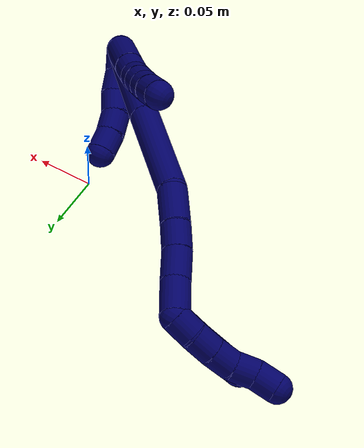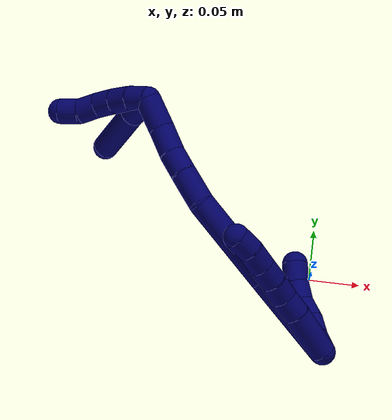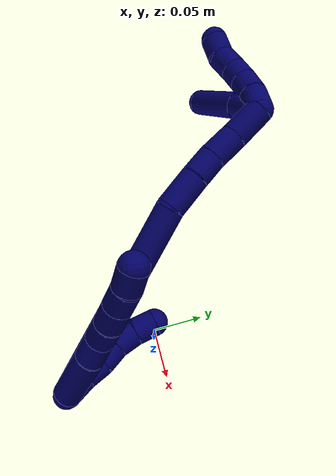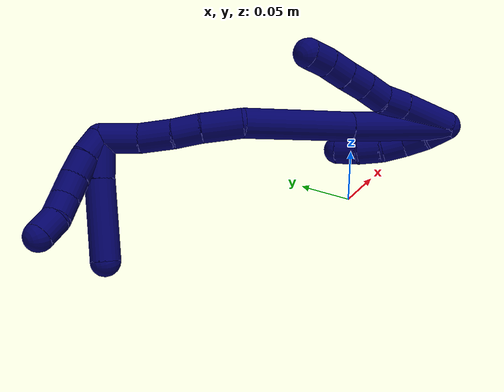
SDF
<sdf version="1.7">
 <world name="default">
  <model name="7">
   <static>0</static>
   <link name="7">
    <collision name="collision-cylinder-e_1_2_8">
     <pose>-0.00883 0.013323 0.016944 -0.666337 -0.388788 0.136058</pose>
     <geometry><cylinder><radius>0.0125</radius><length>0.046587</length></cylinder></geometry>
     <surface>
      <friction><ode><mu>1.16</mu><mu2>1.16</mu2><slip1>0</slip1><slip2>0</slip2></ode></friction>
      <contact><ode><kp>1e+06</kp><kd>1</kd><max_vel>0</max_vel><min_depth>0.001</min_depth></ode></contact>
     </surface>
    </collision>
    <visual name="visual-cylinder-e_1_2_8">
     <pose>-0.00883 0.013323 0.016944 -0.666337 -0.388788 0.136058</pose>
     <geometry><cylinder><radius>0.0125</radius><length>0.046587</length></cylinder></geometry>
     <material><ambient>0.003922 0 0.403922 1</ambient></material>
    </visual>
    <collision name="collision-cylinder-e_2_8_9">
     <pose>-0.021692 0.03217 0.042152 -0.589208 -0.385443 0.118288</pose>
     <geometry><cylinder><radius>0.0125</radius><length>0.021451</length></cylinder></geometry>
     <surface>
      <friction><ode><mu>1.16</mu><mu2>1.16</mu2><slip1>0</slip1><slip2>0</slip2></ode></friction>
      <contact><ode><kp>1e+06</kp><kd>1</kd><max_vel>0</max_vel><min_depth>0.001</min_depth></ode></contact>
     </surface>
    </collision>
    <visual name="visual-cylinder-e_2_8_9">
     <pose>-0.021692 0.03217 0.042152 -0.589208 -0.385443 0.118288</pose>
     <geometry><cylinder><radius>0.0125</radius><length>0.021451</length></cylinder></geometry>
     <material><ambient>0.003922 0 0.403922 1</ambient></material>
    </visual>
    <collision name="collision-cylinder-e_3_9_10">
     <pose>-0.02846 0.044882 0.057459 -0.795575 -0.265335 0.112032</pose>
     <geometry><cylinder><radius>0.0125</radius><length>0.02086</length></cylinder></geometry>
     <surface>
      <friction><ode><mu>1.16</mu><mu2>1.16</mu2><slip1>0</slip1><slip2>0</slip2></ode></friction>
      <contact><ode><kp>1e+06</kp><kd>1</kd><max_vel>0</max_vel><min_depth>0.001</min_depth></ode></contact>
     </surface>
    </collision>
    <visual name="visual-cylinder-e_3_9_10">
     <pose>-0.02846 0.044882 0.057459 -0.795575 -0.265335 0.112032</pose>
     <geometry><cylinder><radius>0.0125</radius><length>0.02086</length></cylinder></geometry>
     <material><ambient>0.003922 0 0.403922 1</ambient></material>
    </visual>
    <collision name="collision-cylinder-e_4_10_11">
     <pose>-0.033904 0.05859 0.072002 -0.715598 -0.266165 0.100025</pose>
     <geometry><cylinder><radius>0.0125</radius><length>0.020599</length></cylinder></geometry>
     <surface>
      <friction><ode><mu>1.16</mu><mu2>1.16</mu2><slip1>0</slip1><slip2>0</slip2></ode></friction>
      <contact><ode><kp>1e+06</kp><kd>1</kd><max_vel>0</max_vel><min_depth>0.001</min_depth></ode></contact>
     </surface>
    </collision>
    <visual name="visual-cylinder-e_4_10_11">
     <pose>-0.033904 0.05859 0.072002 -0.715598 -0.266165 0.100025</pose>
     <geometry><cylinder><radius>0.0125</radius><length>0.020599</length></cylinder></geometry>
     <material><ambient>0.003922 0 0.403922 1</ambient></material>
    </visual>
    <collision name="collision-cylinder-e_5_11_12">
     <pose>-0.039116 0.071934 0.086727 -0.756866 -0.246726 0.098518</pose>
     <geometry><cylinder><radius>0.0125</radius><length>0.020499</length></cylinder></geometry>
     <surface>
      <friction><ode><mu>1.16</mu><mu2>1.16</mu2><slip1>0</slip1><slip2>0</slip2></ode></friction>
      <contact><ode><kp>1e+06</kp><kd>1</kd><max_vel>0</max_vel><min_depth>0.001</min_depth></ode></contact>
     </surface>
    </collision>
    <visual name="visual-cylinder-e_5_11_12">
     <pose>-0.039116 0.071934 0.086727 -0.756866 -0.246726 0.098518</pose>
     <geometry><cylinder><radius>0.0125</radius><length>0.020499</length></cylinder></geometry>
     <material><ambient>0.003922 0 0.403922 1</ambient></material>
    </visual>
    <collision name="collision-cylinder-e_6_12_6">
     <pose>-0.043565 0.084228 0.102097 -0.591395 -0.195722 0.059796</pose>
     <geometry><cylinder><radius>0.0125</radius><length>0.020004</length></cylinder></geometry>
     <surface>
      <friction><ode><mu>1.16</mu><mu2>1.16</mu2><slip1>0</slip1><slip2>0</slip2></ode></friction>
      <contact><ode><kp>1e+06</kp><kd>1</kd><max_vel>0</max_vel><min_depth>0.001</min_depth></ode></contact>
     </surface>
    </collision>
    <visual name="visual-cylinder-e_6_12_6">
     <pose>-0.043565 0.084228 0.102097 -0.591395 -0.195722 0.059796</pose>
     <geometry><cylinder><radius>0.0125</radius><length>0.020004</length></cylinder></geometry>
     <material><ambient>0.003922 0 0.403922 1</ambient></material>
    </visual>
    <collision name="collision-cylinder-e_1_2_13">
     <pose>-0.008445 -0.002735 0.004605 0.5359 -1.00563 -0.299723</pose>
     <geometry><cylinder><radius>0.0125</radius><length>0.02</length></cylinder></geometry>
     <surface>
      <friction><ode><mu>1.16</mu><mu2>1.16</mu2><slip1>0</slip1><slip2>0</slip2></ode></friction>
      <contact><ode><kp>1e+06</kp><kd>1</kd><max_vel>0</max_vel><min_depth>0.001</min_depth></ode></contact>
     </surface>
    </collision>
    <visual name="visual-cylinder-e_1_2_13">
     <pose>-0.008445 -0.002735 0.004605 0.5359 -1.00563 -0.299723</pose>
     <geometry><cylinder><radius>0.0125</radius><length>0.02</length></cylinder></geometry>
     <material><ambient>0.003922 0 0.403922 1</ambient></material>
    </visual>
    <collision name="collision-cylinder-e_2_13_14">
     <pose>-0.026014 -0.006966 0.013018 0.374345 -1.14919 -0.244031</pose>
     <geometry><cylinder><radius>0.0125</radius><length>0.02</length></cylinder></geometry>
     <surface>
      <friction><ode><mu>1.16</mu><mu2>1.16</mu2><slip1>0</slip1><slip2>0</slip2></ode></friction>
      <contact><ode><kp>1e+06</kp><kd>1</kd><max_vel>0</max_vel><min_depth>0.001</min_depth></ode></contact>
     </surface>
    </collision>
    <visual name="visual-cylinder-e_2_13_14">
     <pose>-0.026014 -0.006966 0.013018 0.374345 -1.14919 -0.244031</pose>
     <geometry><cylinder><radius>0.0125</radius><length>0.02</length></cylinder></geometry>
     <material><ambient>0.003922 0 0.403922 1</ambient></material>
    </visual>
    <collision name="collision-cylinder-e_3_14_15">
     <pose>-0.04314 -0.008885 0.02281 0.070562 -0.92757 -0.035304</pose>
     <geometry><cylinder><radius>0.0125</radius><length>0.02</length></cylinder></geometry>
     <surface>
      <friction><ode><mu>1.16</mu><mu2>1.16</mu2><slip1>0</slip1><slip2>0</slip2></ode></friction>
      <contact><ode><kp>1e+06</kp><kd>1</kd><max_vel>0</max_vel><min_depth>0.001</min_depth></ode></contact>
     </surface>
    </collision>
    <visual name="visual-cylinder-e_3_14_15">
     <pose>-0.04314 -0.008885 0.02281 0.070562 -0.92757 -0.035304</pose>
     <geometry><cylinder><radius>0.0125</radius><length>0.02</length></cylinder></geometry>
     <material><ambient>0.003922 0 0.403922 1</ambient></material>
    </visual>
    <collision name="collision-cylinder-e_4_15_16">
     <pose>-0.060249 -0.008497 0.032843 -0.197621 -1.14505 0.127617</pose>
     <geometry><cylinder><radius>0.0125</radius><length>0.02</length></cylinder></geometry>
     <surface>
      <friction><ode><mu>1.16</mu><mu2>1.16</mu2><slip1>0</slip1><slip2>0</slip2></ode></friction>
      <contact><ode><kp>1e+06</kp><kd>1</kd><max_vel>0</max_vel><min_depth>0.001</min_depth></ode></contact>
     </surface>
    </collision>
    <visual name="visual-cylinder-e_4_15_16">
     <pose>-0.060249 -0.008497 0.032843 -0.197621 -1.14505 0.127617</pose>
     <geometry><cylinder><radius>0.0125</radius><length>0.02</length></cylinder></geometry>
     <material><ambient>0.003922 0 0.403922 1</ambient></material>
    </visual>
    <collision name="collision-cylinder-e_5_16_5">
     <pose>-0.078847 -0.006041 0.03958 -0.549154 -1.25023 0.401106</pose>
     <geometry><cylinder><radius>0.0125</radius><length>0.02</length></cylinder></geometry>
     <surface>
      <friction><ode><mu>1.16</mu><mu2>1.16</mu2><slip1>0</slip1><slip2>0</slip2></ode></friction>
      <contact><ode><kp>1e+06</kp><kd>1</kd><max_vel>0</max_vel><min_depth>0.001</min_depth></ode></contact>
     </surface>
    </collision>
    <visual name="visual-cylinder-e_5_16_5">
     <pose>-0.078847 -0.006041 0.03958 -0.549154 -1.25023 0.401106</pose>
     <geometry><cylinder><radius>0.0125</radius><length>0.02</length></cylinder></geometry>
     <material><ambient>0.003922 0 0.403922 1</ambient></material>
    </visual>
    <collision name="collision-cylinder-e_1_2_17">
     <pose>-0.024015 0.010303 0.035517 -0.282339 -0.575938 0.08414</pose>
     <geometry><cylinder><radius>0.0125</radius><length>0.08819</length></cylinder></geometry>
     <surface>
      <friction><ode><mu>1.16</mu><mu2>1.16</mu2><slip1>0</slip1><slip2>0</slip2></ode></friction>
      <contact><ode><kp>1e+06</kp><kd>1</kd><max_vel>0</max_vel><min_depth>0.001</min_depth></ode></contact>
     </surface>
    </collision>
    <visual name="visual-cylinder-e_1_2_17">
     <pose>-0.024015 0.010303 0.035517 -0.282339 -0.575938 0.08414</pose>
     <geometry><cylinder><radius>0.0125</radius><length>0.08819</length></cylinder></geometry>
     <material><ambient>0.003922 0 0.403922 1</ambient></material>
    </visual>
    <collision name="collision-cylinder-e_2_17_18">
     <pose>-0.07281 0.033386 0.108891 -0.325574 -0.55513 0.093522</pose>
     <geometry><cylinder><radius>0.0125</radius><length>0.094031</length></cylinder></geometry>
     <surface>
      <friction><ode><mu>1.16</mu><mu2>1.16</mu2><slip1>0</slip1><slip2>0</slip2></ode></friction>
      <contact><ode><kp>1e+06</kp><kd>1</kd><max_vel>0</max_vel><min_depth>0.001</min_depth></ode></contact>
     </surface>
    </collision>
    <visual name="visual-cylinder-e_2_17_18">
     <pose>-0.07281 0.033386 0.108891 -0.325574 -0.55513 0.093522</pose>
     <geometry><cylinder><radius>0.0125</radius><length>0.094031</length></cylinder></geometry>
     <material><ambient>0.003922 0 0.403922 1</ambient></material>
    </visual>
    <collision name="collision-cylinder-e_3_18_19">
     <pose>-0.109879 0.04788 0.15822 -0.148305 -0.814258 0.064048</pose>
     <geometry><cylinder><radius>0.0125</radius><length>0.033799</length></cylinder></geometry>
     <surface>
      <friction><ode><mu>1.16</mu><mu2>1.16</mu2><slip1>0</slip1><slip2>0</slip2></ode></friction>
      <contact><ode><kp>1e+06</kp><kd>1</kd><max_vel>0</max_vel><min_depth>0.001</min_depth></ode></contact>
     </surface>
    </collision>
    <visual name="visual-cylinder-e_3_18_19">
     <pose>-0.109879 0.04788 0.15822 -0.148305 -0.814258 0.064048</pose>
     <geometry><cylinder><radius>0.0125</radius><length>0.033799</length></cylinder></geometry>
     <material><ambient>0.003922 0 0.403922 1</ambient></material>
    </visual>
    <collision name="collision-cylinder-e_4_19_20">
     <pose>-0.131086 0.049824 0.177162 -0.03082 -0.873263 0.014384</pose>
     <geometry><cylinder><radius>0.0125</radius><length>0.02327</length></cylinder></geometry>
     <surface>
      <friction><ode><mu>1.16</mu><mu2>1.16</mu2><slip1>0</slip1><slip2>0</slip2></ode></friction>
      <contact><ode><kp>1e+06</kp><kd>1</kd><max_vel>0</max_vel><min_depth>0.001</min_depth></ode></contact>
     </surface>
    </collision>
    <visual name="visual-cylinder-e_4_19_20">
     <pose>-0.131086 0.049824 0.177162 -0.03082 -0.873263 0.014384</pose>
     <geometry><cylinder><radius>0.0125</radius><length>0.02327</length></cylinder></geometry>
     <material><ambient>0.003922 0 0.403922 1</ambient></material>
    </visual>
    <collision name="collision-cylinder-e_5_20_21">
     <pose>-0.151457 0.051126 0.19262 -0.133302 -0.957665 0.069276</pose>
     <geometry><cylinder><radius>0.0125</radius><length>0.02801</length></cylinder></geometry>
     <surface>
      <friction><ode><mu>1.16</mu><mu2>1.16</mu2><slip1>0</slip1><slip2>0</slip2></ode></friction>
      <contact><ode><kp>1e+06</kp><kd>1</kd><max_vel>0</max_vel><min_depth>0.001</min_depth></ode></contact>
     </surface>
    </collision>
    <visual name="visual-cylinder-e_5_20_21">
     <pose>-0.151457 0.051126 0.19262 -0.133302 -0.957665 0.069276</pose>
     <geometry><cylinder><radius>0.0125</radius><length>0.02801</length></cylinder></geometry>
     <material><ambient>0.003922 0 0.403922 1</ambient></material>
    </visual>
    <collision name="collision-cylinder-e_6_21_1">
     <pose>-0.175242 0.055752 0.210739 -0.337484 -0.854335 0.154787</pose>
     <geometry><cylinder><radius>0.0125</radius><length>0.032701</length></cylinder></geometry>
     <surface>
      <friction><ode><mu>1.16</mu><mu2>1.16</mu2><slip1>0</slip1><slip2>0</slip2></ode></friction>
      <contact><ode><kp>1e+06</kp><kd>1</kd><max_vel>0</max_vel><min_depth>0.001</min_depth></ode></contact>
     </surface>
    </collision>
    <visual name="visual-cylinder-e_6_21_1">
     <pose>-0.175242 0.055752 0.210739 -0.337484 -0.854335 0.154787</pose>
     <geometry><cylinder><radius>0.0125</radius><length>0.032701</length></cylinder></geometry>
     <material><ambient>0.003922 0 0.403922 1</ambient></material>
    </visual>
    <collision name="collision-cylinder-e_1_1_22">
     <pose>-0.188968 0.053887 0.229158 0.579226 -0.14009 -0.041808</pose>
     <geometry><cylinder><radius>0.0125</radius><length>0.02</length></cylinder></geometry>
     <surface>
      <friction><ode><mu>1.16</mu><mu2>1.16</mu2><slip1>0</slip1><slip2>0</slip2></ode></friction>
      <contact><ode><kp>1e+06</kp><kd>1</kd><max_vel>0</max_vel><min_depth>0.001</min_depth></ode></contact>
     </surface>
    </collision>
    <visual name="visual-cylinder-e_1_1_22">
     <pose>-0.188968 0.053887 0.229158 0.579226 -0.14009 -0.041808</pose>
     <geometry><cylinder><radius>0.0125</radius><length>0.02</length></cylinder></geometry>
     <material><ambient>0.003922 0 0.403922 1</ambient></material>
    </visual>
    <collision name="collision-cylinder-e_2_22_23">
     <pose>-0.190895 0.041763 0.244846 0.735985 -0.053104 -0.020479</pose>
     <geometry><cylinder><radius>0.0125</radius><length>0.02</length></cylinder></geometry>
     <surface>
      <friction><ode><mu>1.16</mu><mu2>1.16</mu2><slip1>0</slip1><slip2>0</slip2></ode></friction>
      <contact><ode><kp>1e+06</kp><kd>1</kd><max_vel>0</max_vel><min_depth>0.001</min_depth></ode></contact>
     </surface>
    </collision>
    <visual name="visual-cylinder-e_2_22_23">
     <pose>-0.190895 0.041763 0.244846 0.735985 -0.053104 -0.020479</pose>
     <geometry><cylinder><radius>0.0125</radius><length>0.02</length></cylinder></geometry>
     <material><ambient>0.003922 0 0.403922 1</ambient></material>
    </visual>
    <collision name="collision-cylinder-e_3_23_24">
     <pose>-0.191154 0.028256 0.25957 0.748671 0.027215 0.010692</pose>
     <geometry><cylinder><radius>0.0125</radius><length>0.02</length></cylinder></geometry>
     <surface>
      <friction><ode><mu>1.16</mu><mu2>1.16</mu2><slip1>0</slip1><slip2>0</slip2></ode></friction>
      <contact><ode><kp>1e+06</kp><kd>1</kd><max_vel>0</max_vel><min_depth>0.001</min_depth></ode></contact>
     </surface>
    </collision>
    <visual name="visual-cylinder-e_3_23_24">
     <pose>-0.191154 0.028256 0.25957 0.748671 0.027215 0.010692</pose>
     <geometry><cylinder><radius>0.0125</radius><length>0.02</length></cylinder></geometry>
     <material><ambient>0.003922 0 0.403922 1</ambient></material>
    </visual>
    <collision name="collision-cylinder-e_4_24_25">
     <pose>-0.188183 0.016039 0.274858 0.596853 0.273243 0.084529</pose>
     <geometry><cylinder><radius>0.0125</radius><length>0.02</length></cylinder></geometry>
     <surface>
      <friction><ode><mu>1.16</mu><mu2>1.16</mu2><slip1>0</slip1><slip2>0</slip2></ode></friction>
      <contact><ode><kp>1e+06</kp><kd>1</kd><max_vel>0</max_vel><min_depth>0.001</min_depth></ode></contact>
     </surface>
    </collision>
    <visual name="visual-cylinder-e_4_24_25">
     <pose>-0.188183 0.016039 0.274858 0.596853 0.273243 0.084529</pose>
     <geometry><cylinder><radius>0.0125</radius><length>0.02</length></cylinder></geometry>
     <material><ambient>0.003922 0 0.403922 1</ambient></material>
    </visual>
    <collision name="collision-cylinder-e_5_25_4">
     <pose>-0.185184 0.006747 0.292033 0.398766 0.03008 0.006079</pose>
     <geometry><cylinder><radius>0.0125</radius><length>0.02</length></cylinder></geometry>
     <surface>
      <friction><ode><mu>1.16</mu><mu2>1.16</mu2><slip1>0</slip1><slip2>0</slip2></ode></friction>
      <contact><ode><kp>1e+06</kp><kd>1</kd><max_vel>0</max_vel><min_depth>0.001</min_depth></ode></contact>
     </surface>
    </collision>
    <visual name="visual-cylinder-e_5_25_4">
     <pose>-0.185184 0.006747 0.292033 0.398766 0.03008 0.006079</pose>
     <geometry><cylinder><radius>0.0125</radius><length>0.02</length></cylinder></geometry>
     <material><ambient>0.003922 0 0.403922 1</ambient></material>
    </visual>
    <collision name="collision-cylinder-e_1_1_26">
     <pose>-0.187315 0.043453 0.226415 1.23439 0.015286 0.010848</pose>
     <geometry><cylinder><radius>0.0125</radius><length>0.033596</length></cylinder></geometry>
     <surface>
      <friction><ode><mu>1.16</mu><mu2>1.16</mu2><slip1>0</slip1><slip2>0</slip2></ode></friction>
      <contact><ode><kp>1e+06</kp><kd>1</kd><max_vel>0</max_vel><min_depth>0.001</min_depth></ode></contact>
     </surface>
    </collision>
    <visual name="visual-cylinder-e_1_1_26">
     <pose>-0.187315 0.043453 0.226415 1.23439 0.015286 0.010848</pose>
     <geometry><cylinder><radius>0.0125</radius><length>0.033596</length></cylinder></geometry>
     <material><ambient>0.003922 0 0.403922 1</ambient></material>
    </visual>
    <collision name="collision-cylinder-e_2_26_3">
     <pose>-0.184927 -0.004305 0.240904 1.29745 0.064223 0.0487</pose>
     <geometry><cylinder><radius>0.0125</radius><length>0.066404</length></cylinder></geometry>
     <surface>
      <friction><ode><mu>1.16</mu><mu2>1.16</mu2><slip1>0</slip1><slip2>0</slip2></ode></friction>
      <contact><ode><kp>1e+06</kp><kd>1</kd><max_vel>0</max_vel><min_depth>0.001</min_depth></ode></contact>
     </surface>
    </collision>
    <visual name="visual-cylinder-e_2_26_3">
     <pose>-0.184927 -0.004305 0.240904 1.29745 0.064223 0.0487</pose>
     <geometry><cylinder><radius>0.0125</radius><length>0.066404</length></cylinder></geometry>
     <material><ambient>0.003922 0 0.403922 1</ambient></material>
    </visual>
    <collision name="collision-sphere-3">
     <pose>-0.182797 -0.036209 0.249848 0 -0 0</pose>
     <geometry><sphere><radius>0.0125</radius></sphere></geometry>
     <surface>
      <friction><ode><mu>1.16</mu><mu2>1.16</mu2><slip1>0</slip1><slip2>0</slip2></ode></friction>
      <contact><ode><kp>1e+06</kp><kd>1</kd><max_vel>0</max_vel><min_depth>0.001</min_depth></ode></contact>
     </surface>
    </collision>
    <visual name="visual-sphere-3">
     <pose>-0.182797 -0.036209 0.249848 0 -0 0</pose>
     <geometry><sphere><radius>0.0125</radius></sphere></geometry>
     <material><ambient>0.003922 0 0.403922 1</ambient></material>
    </visual>
    <collision name="collision-sphere-26">
     <pose>-0.187058 0.027598 0.231959 0 -0 0</pose>
     <geometry><sphere><radius>0.0125</radius></sphere></geometry>
     <surface>
      <friction><ode><mu>1.16</mu><mu2>1.16</mu2><slip1>0</slip1><slip2>0</slip2></ode></friction>
      <contact><ode><kp>1e+06</kp><kd>1</kd><max_vel>0</max_vel><min_depth>0.001</min_depth></ode></contact>
     </surface>
    </collision>
    <visual name="visual-sphere-26">
     <pose>-0.187058 0.027598 0.231959 0 -0 0</pose>
     <geometry><sphere><radius>0.0125</radius></sphere></geometry>
     <material><ambient>0.003922 0 0.403922 1</ambient></material>
    </visual>
    <collision name="collision-sphere-4">
     <pose>-0.184883 0.002865 0.301244 0 -0 0</pose>
     <geometry><sphere><radius>0.0125</radius></sphere></geometry>
     <surface>
      <friction><ode><mu>1.16</mu><mu2>1.16</mu2><slip1>0</slip1><slip2>0</slip2></ode></friction>
      <contact><ode><kp>1e+06</kp><kd>1</kd><max_vel>0</max_vel><min_depth>0.001</min_depth></ode></contact>
     </surface>
    </collision>
    <visual name="visual-sphere-4">
     <pose>-0.184883 0.002865 0.301244 0 -0 0</pose>
     <geometry><sphere><radius>0.0125</radius></sphere></geometry>
     <material><ambient>0.003922 0 0.403922 1</ambient></material>
    </visual>
    <collision name="collision-sphere-25">
     <pose>-0.185485 0.010628 0.282822 0 -0 0</pose>
     <geometry><sphere><radius>0.0125</radius></sphere></geometry>
     <surface>
      <friction><ode><mu>1.16</mu><mu2>1.16</mu2><slip1>0</slip1><slip2>0</slip2></ode></friction>
      <contact><ode><kp>1e+06</kp><kd>1</kd><max_vel>0</max_vel><min_depth>0.001</min_depth></ode></contact>
     </surface>
    </collision>
    <visual name="visual-sphere-25">
     <pose>-0.185485 0.010628 0.282822 0 -0 0</pose>
     <geometry><sphere><radius>0.0125</radius></sphere></geometry>
     <material><ambient>0.003922 0 0.403922 1</ambient></material>
    </visual>
    <collision name="collision-sphere-24">
     <pose>-0.190882 0.021451 0.266893 0 -0 0</pose>
     <geometry><sphere><radius>0.0125</radius></sphere></geometry>
     <surface>
      <friction><ode><mu>1.16</mu><mu2>1.16</mu2><slip1>0</slip1><slip2>0</slip2></ode></friction>
      <contact><ode><kp>1e+06</kp><kd>1</kd><max_vel>0</max_vel><min_depth>0.001</min_depth></ode></contact>
     </surface>
    </collision>
    <visual name="visual-sphere-24">
     <pose>-0.190882 0.021451 0.266893 0 -0 0</pose>
     <geometry><sphere><radius>0.0125</radius></sphere></geometry>
     <material><ambient>0.003922 0 0.403922 1</ambient></material>
    </visual>
    <collision name="collision-sphere-23">
     <pose>-0.191426 0.03506 0.252247 0 -0 0</pose>
     <geometry><sphere><radius>0.0125</radius></sphere></geometry>
     <surface>
      <friction><ode><mu>1.16</mu><mu2>1.16</mu2><slip1>0</slip1><slip2>0</slip2></ode></friction>
      <contact><ode><kp>1e+06</kp><kd>1</kd><max_vel>0</max_vel><min_depth>0.001</min_depth></ode></contact>
     </surface>
    </collision>
    <visual name="visual-sphere-23">
     <pose>-0.191426 0.03506 0.252247 0 -0 0</pose>
     <geometry><sphere><radius>0.0125</radius></sphere></geometry>
     <material><ambient>0.003922 0 0.403922 1</ambient></material>
    </visual>
    <collision name="collision-sphere-22">
     <pose>-0.190365 0.048467 0.237445 0 -0 0</pose>
     <geometry><sphere><radius>0.0125</radius></sphere></geometry>
     <surface>
      <friction><ode><mu>1.16</mu><mu2>1.16</mu2><slip1>0</slip1><slip2>0</slip2></ode></friction>
      <contact><ode><kp>1e+06</kp><kd>1</kd><max_vel>0</max_vel><min_depth>0.001</min_depth></ode></contact>
     </surface>
    </collision>
    <visual name="visual-sphere-22">
     <pose>-0.190365 0.048467 0.237445 0 -0 0</pose>
     <geometry><sphere><radius>0.0125</radius></sphere></geometry>
     <material><ambient>0.003922 0 0.403922 1</ambient></material>
    </visual>
    <collision name="collision-sphere-1">
     <pose>-0.187572 0.059307 0.220871 0 -0 0</pose>
     <geometry><sphere><radius>0.0125</radius></sphere></geometry>
     <surface>
      <friction><ode><mu>1.16</mu><mu2>1.16</mu2><slip1>0</slip1><slip2>0</slip2></ode></friction>
      <contact><ode><kp>1e+06</kp><kd>1</kd><max_vel>0</max_vel><min_depth>0.001</min_depth></ode></contact>
     </surface>
    </collision>
    <visual name="visual-sphere-1">
     <pose>-0.187572 0.059307 0.220871 0 -0 0</pose>
     <geometry><sphere><radius>0.0125</radius></sphere></geometry>
     <material><ambient>0.003922 0 0.403922 1</ambient></material>
    </visual>
    <collision name="collision-sphere-21">
     <pose>-0.162911 0.052197 0.200607 0 -0 0</pose>
     <geometry><sphere><radius>0.0125</radius></sphere></geometry>
     <surface>
      <friction><ode><mu>1.16</mu><mu2>1.16</mu2><slip1>0</slip1><slip2>0</slip2></ode></friction>
      <contact><ode><kp>1e+06</kp><kd>1</kd><max_vel>0</max_vel><min_depth>0.001</min_depth></ode></contact>
     </surface>
    </collision>
    <visual name="visual-sphere-21">
     <pose>-0.162911 0.052197 0.200607 0 -0 0</pose>
     <geometry><sphere><radius>0.0125</radius></sphere></geometry>
     <material><ambient>0.003922 0 0.403922 1</ambient></material>
    </visual>
    <collision name="collision-sphere-12">
     <pose>-0.041619 0.078759 0.093953 0 -0 0</pose>
     <geometry><sphere><radius>0.0125</radius></sphere></geometry>
     <surface>
      <friction><ode><mu>1.16</mu><mu2>1.16</mu2><slip1>0</slip1><slip2>0</slip2></ode></friction>
      <contact><ode><kp>1e+06</kp><kd>1</kd><max_vel>0</max_vel><min_depth>0.001</min_depth></ode></contact>
     </surface>
    </collision>
    <visual name="visual-sphere-12">
     <pose>-0.041619 0.078759 0.093953 0 -0 0</pose>
     <geometry><sphere><radius>0.0125</radius></sphere></geometry>
     <material><ambient>0.003922 0 0.403922 1</ambient></material>
    </visual>
    <collision name="collision-sphere-11">
     <pose>-0.036613 0.065109 0.079501 0 -0 0</pose>
     <geometry><sphere><radius>0.0125</radius></sphere></geometry>
     <surface>
      <friction><ode><mu>1.16</mu><mu2>1.16</mu2><slip1>0</slip1><slip2>0</slip2></ode></friction>
      <contact><ode><kp>1e+06</kp><kd>1</kd><max_vel>0</max_vel><min_depth>0.001</min_depth></ode></contact>
     </surface>
    </collision>
    <visual name="visual-sphere-11">
     <pose>-0.036613 0.065109 0.079501 0 -0 0</pose>
     <geometry><sphere><radius>0.0125</radius></sphere></geometry>
     <material><ambient>0.003922 0 0.403922 1</ambient></material>
    </visual>
    <collision name="collision-sphere-10">
     <pose>-0.031195 0.052071 0.064503 0 -0 0</pose>
     <geometry><sphere><radius>0.0125</radius></sphere></geometry>
     <surface>
      <friction><ode><mu>1.16</mu><mu2>1.16</mu2><slip1>0</slip1><slip2>0</slip2></ode></friction>
      <contact><ode><kp>1e+06</kp><kd>1</kd><max_vel>0</max_vel><min_depth>0.001</min_depth></ode></contact>
     </surface>
    </collision>
    <visual name="visual-sphere-10">
     <pose>-0.031195 0.052071 0.064503 0 -0 0</pose>
     <geometry><sphere><radius>0.0125</radius></sphere></geometry>
     <material><ambient>0.003922 0 0.403922 1</ambient></material>
    </visual>
    <collision name="collision-sphere-9">
     <pose>-0.025725 0.037693 0.050414 0 -0 0</pose>
     <geometry><sphere><radius>0.0125</radius></sphere></geometry>
     <surface>
      <friction><ode><mu>1.16</mu><mu2>1.16</mu2><slip1>0</slip1><slip2>0</slip2></ode></friction>
      <contact><ode><kp>1e+06</kp><kd>1</kd><max_vel>0</max_vel><min_depth>0.001</min_depth></ode></contact>
     </surface>
    </collision>
    <visual name="visual-sphere-9">
     <pose>-0.025725 0.037693 0.050414 0 -0 0</pose>
     <geometry><sphere><radius>0.0125</radius></sphere></geometry>
     <material><ambient>0.003922 0 0.403922 1</ambient></material>
    </visual>
    <collision name="collision-sphere-2">
     <geometry><sphere><radius>0.0125</radius></sphere></geometry>
     <surface>
      <friction><ode><mu>1.16</mu><mu2>1.16</mu2><slip1>0</slip1><slip2>0</slip2></ode></friction>
      <contact><ode><kp>1e+06</kp><kd>1</kd><max_vel>0</max_vel><min_depth>0.001</min_depth></ode></contact>
     </surface>
    </collision>
    <visual name="visual-sphere-2">
     <geometry><sphere><radius>0.0125</radius></sphere></geometry>
     <material><ambient>0.003922 0 0.403922 1</ambient></material>
    </visual>
    <collision name="collision-sphere-19">
     <pose>-0.122169 0.049594 0.169692 0 -0 0</pose>
     <geometry><sphere><radius>0.0125</radius></sphere></geometry>
     <surface>
      <friction><ode><mu>1.16</mu><mu2>1.16</mu2><slip1>0</slip1><slip2>0</slip2></ode></friction>
      <contact><ode><kp>1e+06</kp><kd>1</kd><max_vel>0</max_vel><min_depth>0.001</min_depth></ode></contact>
     </surface>
    </collision>
    <visual name="visual-sphere-19">
     <pose>-0.122169 0.049594 0.169692 0 -0 0</pose>
     <geometry><sphere><radius>0.0125</radius></sphere></geometry>
     <material><ambient>0.003922 0 0.403922 1</ambient></material>
    </visual>
    <collision name="collision-sphere-8">
     <pose>-0.01766 0.026647 0.033889 0 -0 0</pose>
     <geometry><sphere><radius>0.0125</radius></sphere></geometry>
     <surface>
      <friction><ode><mu>1.16</mu><mu2>1.16</mu2><slip1>0</slip1><slip2>0</slip2></ode></friction>
      <contact><ode><kp>1e+06</kp><kd>1</kd><max_vel>0</max_vel><min_depth>0.001</min_depth></ode></contact>
     </surface>
    </collision>
    <visual name="visual-sphere-8">
     <pose>-0.01766 0.026647 0.033889 0 -0 0</pose>
     <geometry><sphere><radius>0.0125</radius></sphere></geometry>
     <material><ambient>0.003922 0 0.403922 1</ambient></material>
    </visual>
    <collision name="collision-sphere-6">
     <pose>-0.04551 0.089698 0.110242 0 -0 0</pose>
     <geometry><sphere><radius>0.0125</radius></sphere></geometry>
     <surface>
      <friction><ode><mu>1.16</mu><mu2>1.16</mu2><slip1>0</slip1><slip2>0</slip2></ode></friction>
      <contact><ode><kp>1e+06</kp><kd>1</kd><max_vel>0</max_vel><min_depth>0.001</min_depth></ode></contact>
     </surface>
    </collision>
    <visual name="visual-sphere-6">
     <pose>-0.04551 0.089698 0.110242 0 -0 0</pose>
     <geometry><sphere><radius>0.0125</radius></sphere></geometry>
     <material><ambient>0.003922 0 0.403922 1</ambient></material>
    </visual>
    <collision name="collision-sphere-13">
     <pose>-0.01689 -0.005469 0.00921 0 -0 0</pose>
     <geometry><sphere><radius>0.0125</radius></sphere></geometry>
     <surface>
      <friction><ode><mu>1.16</mu><mu2>1.16</mu2><slip1>0</slip1><slip2>0</slip2></ode></friction>
      <contact><ode><kp>1e+06</kp><kd>1</kd><max_vel>0</max_vel><min_depth>0.001</min_depth></ode></contact>
     </surface>
    </collision>
    <visual name="visual-sphere-13">
     <pose>-0.01689 -0.005469 0.00921 0 -0 0</pose>
     <geometry><sphere><radius>0.0125</radius></sphere></geometry>
     <material><ambient>0.003922 0 0.403922 1</ambient></material>
    </visual>
    <collision name="collision-sphere-14">
     <pose>-0.035139 -0.008462 0.016827 0 -0 0</pose>
     <geometry><sphere><radius>0.0125</radius></sphere></geometry>
     <surface>
      <friction><ode><mu>1.16</mu><mu2>1.16</mu2><slip1>0</slip1><slip2>0</slip2></ode></friction>
      <contact><ode><kp>1e+06</kp><kd>1</kd><max_vel>0</max_vel><min_depth>0.001</min_depth></ode></contact>
     </surface>
    </collision>
    <visual name="visual-sphere-14">
     <pose>-0.035139 -0.008462 0.016827 0 -0 0</pose>
     <geometry><sphere><radius>0.0125</radius></sphere></geometry>
     <material><ambient>0.003922 0 0.403922 1</ambient></material>
    </visual>
    <collision name="collision-sphere-15">
     <pose>-0.051142 -0.009308 0.028793 0 -0 0</pose>
     <geometry><sphere><radius>0.0125</radius></sphere></geometry>
     <surface>
      <friction><ode><mu>1.16</mu><mu2>1.16</mu2><slip1>0</slip1><slip2>0</slip2></ode></friction>
      <contact><ode><kp>1e+06</kp><kd>1</kd><max_vel>0</max_vel><min_depth>0.001</min_depth></ode></contact>
     </surface>
    </collision>
    <visual name="visual-sphere-15">
     <pose>-0.051142 -0.009308 0.028793 0 -0 0</pose>
     <geometry><sphere><radius>0.0125</radius></sphere></geometry>
     <material><ambient>0.003922 0 0.403922 1</ambient></material>
    </visual>
    <collision name="collision-sphere-16">
     <pose>-0.069357 -0.007686 0.036892 0 -0 0</pose>
     <geometry><sphere><radius>0.0125</radius></sphere></geometry>
     <surface>
      <friction><ode><mu>1.16</mu><mu2>1.16</mu2><slip1>0</slip1><slip2>0</slip2></ode></friction>
      <contact><ode><kp>1e+06</kp><kd>1</kd><max_vel>0</max_vel><min_depth>0.001</min_depth></ode></contact>
     </surface>
    </collision>
    <visual name="visual-sphere-16">
     <pose>-0.069357 -0.007686 0.036892 0 -0 0</pose>
     <geometry><sphere><radius>0.0125</radius></sphere></geometry>
     <material><ambient>0.003922 0 0.403922 1</ambient></material>
    </visual>
    <collision name="collision-sphere-5">
     <pose>-0.088338 -0.004397 0.042268 0 -0 0</pose>
     <geometry><sphere><radius>0.0125</radius></sphere></geometry>
     <surface>
      <friction><ode><mu>1.16</mu><mu2>1.16</mu2><slip1>0</slip1><slip2>0</slip2></ode></friction>
      <contact><ode><kp>1e+06</kp><kd>1</kd><max_vel>0</max_vel><min_depth>0.001</min_depth></ode></contact>
     </surface>
    </collision>
    <visual name="visual-sphere-5">
     <pose>-0.088338 -0.004397 0.042268 0 -0 0</pose>
     <geometry><sphere><radius>0.0125</radius></sphere></geometry>
     <material><ambient>0.003922 0 0.403922 1</ambient></material>
    </visual>
    <collision name="collision-sphere-17">
     <pose>-0.04803 0.020606 0.071035 0 -0 0</pose>
     <geometry><sphere><radius>0.0125</radius></sphere></geometry>
     <surface>
      <friction><ode><mu>1.16</mu><mu2>1.16</mu2><slip1>0</slip1><slip2>0</slip2></ode></friction>
      <contact><ode><kp>1e+06</kp><kd>1</kd><max_vel>0</max_vel><min_depth>0.001</min_depth></ode></contact>
     </surface>
    </collision>
    <visual name="visual-sphere-17">
     <pose>-0.04803 0.020606 0.071035 0 -0 0</pose>
     <geometry><sphere><radius>0.0125</radius></sphere></geometry>
     <material><ambient>0.003922 0 0.403922 1</ambient></material>
    </visual>
    <collision name="collision-sphere-18">
     <pose>-0.097589 0.046166 0.146747 0 -0 0</pose>
     <geometry><sphere><radius>0.0125</radius></sphere></geometry>
     <surface>
      <friction><ode><mu>1.16</mu><mu2>1.16</mu2><slip1>0</slip1><slip2>0</slip2></ode></friction>
      <contact><ode><kp>1e+06</kp><kd>1</kd><max_vel>0</max_vel><min_depth>0.001</min_depth></ode></contact>
     </surface>
    </collision>
    <visual name="visual-sphere-18">
     <pose>-0.097589 0.046166 0.146747 0 -0 0</pose>
     <geometry><sphere><radius>0.0125</radius></sphere></geometry>
     <material><ambient>0.003922 0 0.403922 1</ambient></material>
    </visual>
    <collision name="collision-sphere-20">
     <pose>-0.140003 0.050054 0.184632 0 -0 0</pose>
     <geometry><sphere><radius>0.0125</radius></sphere></geometry>
     <surface>
      <friction><ode><mu>1.16</mu><mu2>1.16</mu2><slip1>0</slip1><slip2>0</slip2></ode></friction>
      <contact><ode><kp>1e+06</kp><kd>1</kd><max_vel>0</max_vel><min_depth>0.001</min_depth></ode></contact>
     </surface>
    </collision>
    <visual name="visual-sphere-20">
     <pose>-0.140003 0.050054 0.184632 0 -0 0</pose>
     <geometry><sphere><radius>0.0125</radius></sphere></geometry>
     <material><ambient>0.003922 0 0.403922 1</ambient></material>
    </visual>
    <inertial>
     <pose>-0.095117 0.026853 0.126925 0 -0 0</pose>
     <mass>0.75</mass>
     <inertia>
      <ixx>0.000169</ixx>
      <ixy>0</ixy>
      <ixz>0</ixz>
      <iyy>0.000192</iyy>
      <iyz>0</iyz>
      <izz>0.000118</izz>
     </inertia>
    </inertial>
   </link>
   <pose>0.016933 -0.081166 0.089313 1.47583 -0.360617 -1.67058</pose>
  </model>
 </world>
</sdf>
